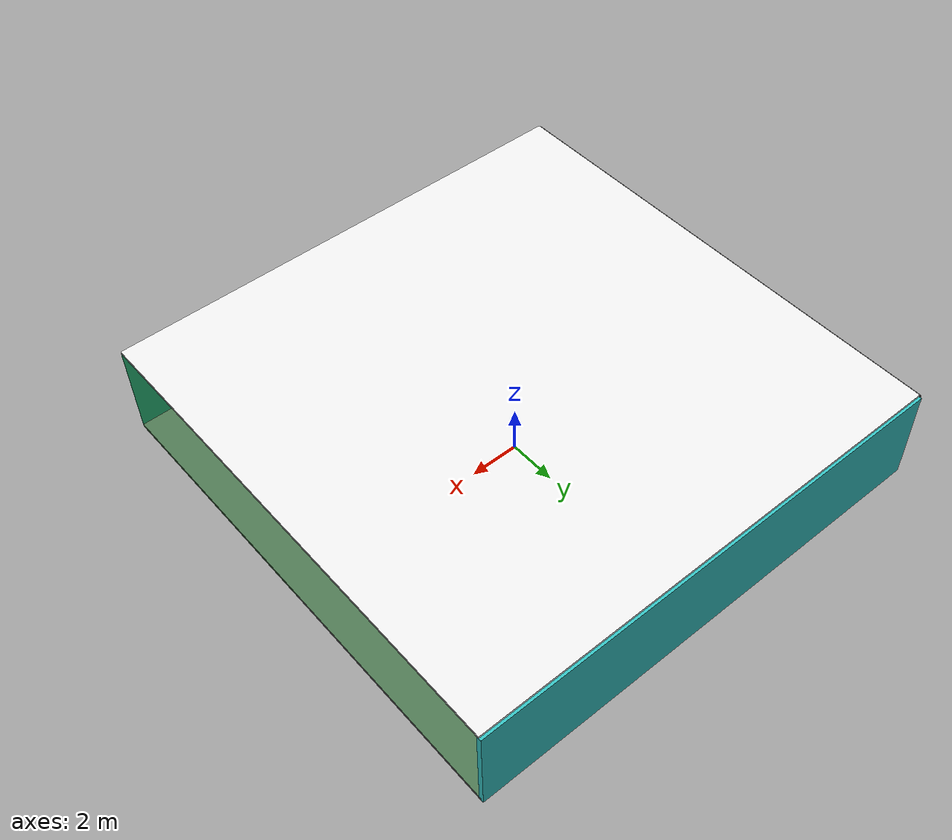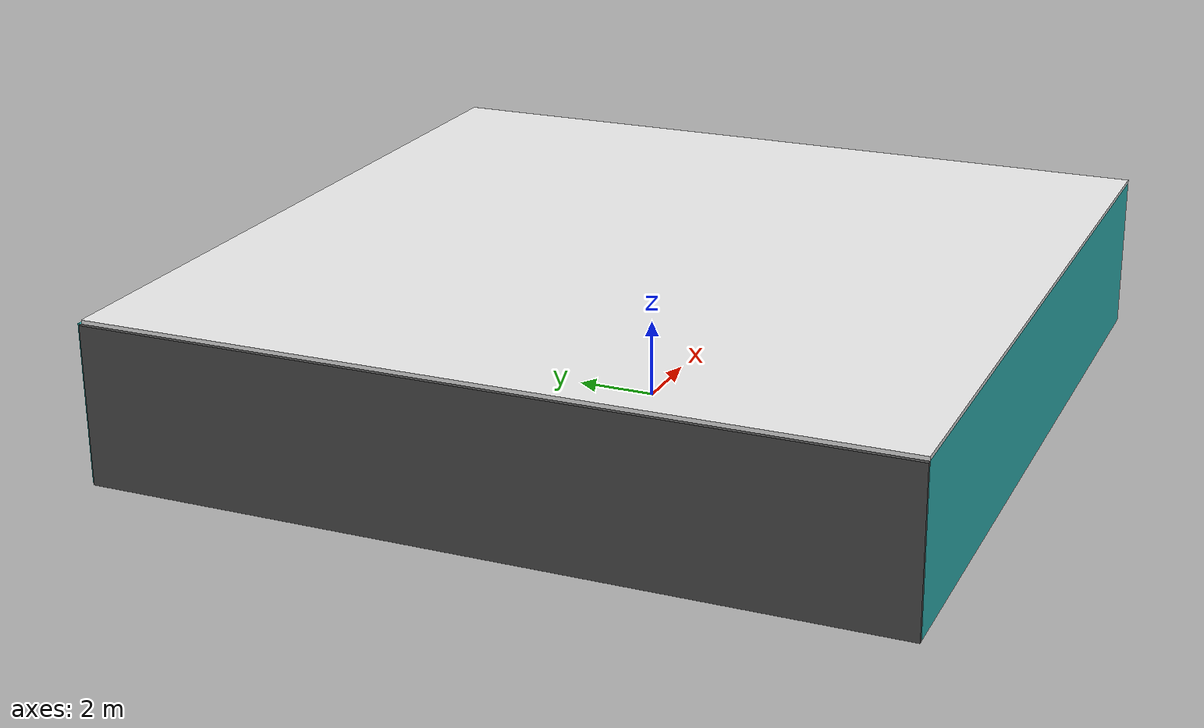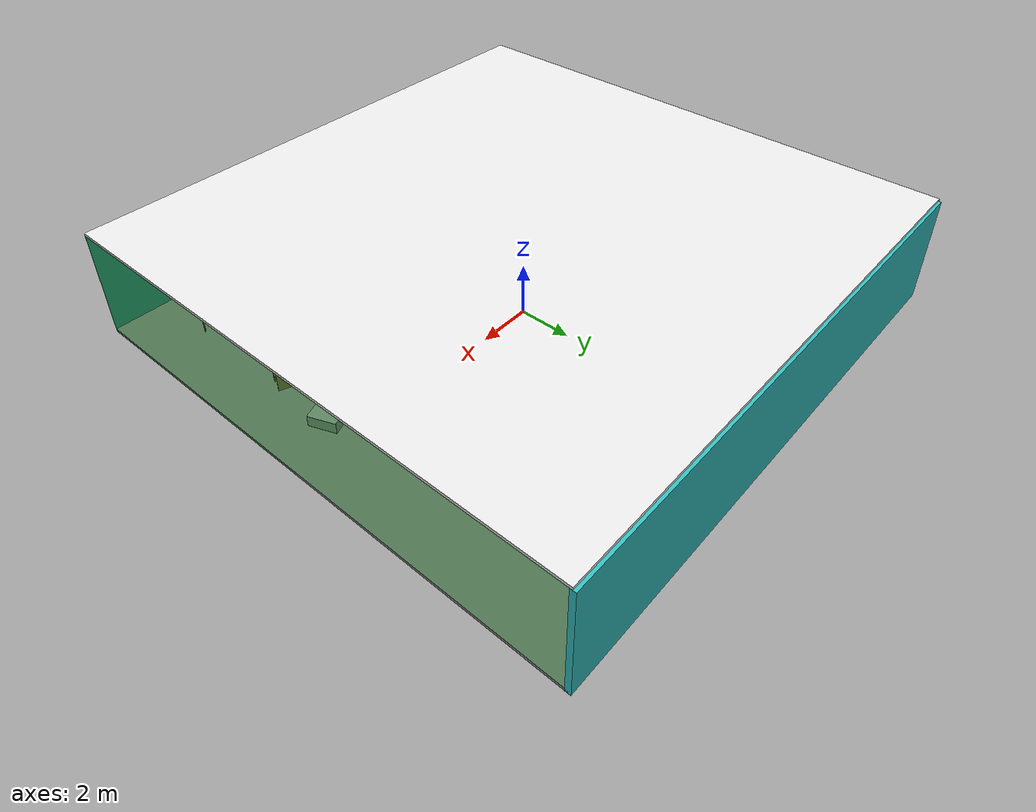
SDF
<sdf version="1.4">
 <world name="default">
  <physics type="ode">
   <max_step_size>0.001</max_step_size>
   <real_time_factor>1</real_time_factor>
   <real_time_update_rate>1000</real_time_update_rate>
   <gravity>0 0 -9.8</gravity>
  </physics>
  <scene><ambient>0.4 0.4 0.4 1</ambient><background>0.7 0.7 0.7 1</background><shadows>1</shadows></scene>
  <model name="Surrounding">
   <static>1</static>
   <link name="Ceiling">
    <collision name="Ceiling_Collision"><geometry><box><size>20 20 0.1</size></box></geometry></collision>
    <visual name="Ceiling_Visual">
     <geometry><box><size>20 20 0.1</size></box></geometry>
     <material>
      <script><uri>file://media/materials/scripts/gazebo.material</uri><name>Gazebo/White</name></script>
     </material>
    </visual>
    <pose>0 0 4.05 0 0 0</pose>
   </link>
   <link name="Wall_South">
    <collision name="Wall_South_Collision">
     <geometry><box><size>20 0 4</size></box></geometry>
     <pose>0 0 2 0 -0 0</pose>
    </collision>
    <visual name="Wall_South_Visual">
     <pose>0 0 2 0 -0 0</pose>
     <geometry><box><size>20 0 4</size></box></geometry>
     <material>
      <script><uri>file://media/materials/scripts/gazebo.material</uri><name>Gazebo/TurquoiseGlow</name></script>
     </material>
    </visual>
    <velocity_decay><linear>0</linear><angular>0</angular></velocity_decay>
    <pose>0 -10 0 0 -0 0</pose>
   </link>
   <link name="Wall_East">
    <collision name="Wall_21_Collision">
     <geometry><box><size>20 0 4</size></box></geometry>
     <pose>0 0 2 0 -0 0</pose>
    </collision>
    <visual name="Wall_21_Visual">
     <pose>0 0 2 0 -0 0</pose>
     <geometry><box><size>20 0 4</size></box></geometry>
     <material>
      <script><uri>file://media/materials/scripts/gazebo.material</uri><name>Gazebo/GreenTransparent</name></script>
     </material>
    </visual>
    <velocity_decay><linear>0</linear><angular>0</angular></velocity_decay>
    <pose>10 0 0 0 -0 1.5708</pose>
   </link>
   <link name="Wall_North">
    <collision name="Wall_22_Collision">
     <geometry><box><size>20 0.2 4</size></box></geometry>
     <pose>0 0 2 0 -0 0</pose>
    </collision>
    <visual name="Wall_22_Visual">
     <pose>0 0 2 0 -0 0</pose>
     <geometry><box><size>20 0.2 4</size></box></geometry>
     <material>
      <script><uri>file://media/materials/scripts/gazebo.material</uri><name>Gazebo/Turquoise</name></script>
     </material>
    </visual>
    <velocity_decay><linear>0</linear><angular>0</angular></velocity_decay>
    <pose>0 10 0 0 -0 0</pose>
   </link>
   <link name="Wall_West">
    <collision name="Wall_23_Collision">
     <geometry><box><size>20 0.2 4</size></box></geometry>
     <pose>0 0 2 0 -0 0</pose>
    </collision>
    <visual name="Wall_23_Visual">
     <pose>0 0 2 0 -0 0</pose>
     <geometry><box><size>20 0.2 4</size></box></geometry>
     <material>
      <script><uri>file://media/materials/scripts/gazebo.material</uri><name>Gazebo/DarkGrey</name></script>
     </material>
    </visual>
    <velocity_decay><linear>0</linear><angular>0</angular></velocity_decay>
    <pose>-10 0 0 0 0 -1.5708</pose>
   </link>
   <link name="Ground_link">
    <collision name="collision">
     <pose>0 0 .05 0 -0 0</pose>
     <geometry><box><size>20 20 0.1</size></box></geometry>
    </collision>
    <visual name="visual">
     <pose>0 0 .05 0 -0 0</pose>
     <geometry><box><size>20 20 0.1</size></box></geometry>
     <material>
      <script><uri>file://media/materials/scripts/gazebo.material</uri><name>Gazebo/GreyGradientSky</name></script>
     </material>
    </visual>
   </link>
   <static>1</static>
  </model>
  <spherical_coordinates>
   <surface_model>EARTH_WGS84</surface_model>
   <latitude_deg>0</latitude_deg>
   <longitude_deg>0</longitude_deg>
   <elevation>0</elevation>
   <heading_deg>0</heading_deg>
  </spherical_coordinates>
  <light name="lightball_0" type="diffuse">
   <diffuse>0.8 0.8 0.8 1</diffuse>
   <specular>0.2 0.2 0.2 1</specular>
   <attenuation>
    <range>100</range>
    <constant>0.7</constant>
    <linear>0.01</linear>
    <quadratic>0.001</quadratic>
   </attenuation>
   <direction>-0.5 0.1 -0.9</direction>
   <pose>-2.23091869418 -4.87460871583 1.82251525484 0 0 0</pose>
  </light>
  <light name="lightball_1" type="diffuse">
   <diffuse>0.8 0.8 0.8 1</diffuse>
   <specular>0.2 0.2 0.2 1</specular>
   <attenuation>
    <range>100</range>
    <constant>0.7</constant>
    <linear>0.01</linear>
    <quadratic>0.001</quadratic>
   </attenuation>
   <direction>-0.5 0.1 -0.9</direction>
   <pose>-9.82039921293 0.368727657406 1.43675704881 0 0 0</pose>
  </light>
  <light name="lightball_2" type="diffuse">
   <diffuse>0.8 0.8 0.8 1</diffuse>
   <specular>0.2 0.2 0.2 1</specular>
   <attenuation>
    <range>100</range>
    <constant>0.7</constant>
    <linear>0.01</linear>
    <quadratic>0.001</quadratic>
   </attenuation>
   <direction>-0.5 0.1 -0.9</direction>
   <pose>-0.507704542123 5.07053456758 1.99425285681 0 0 0</pose>
  </light>
  <light name="lightball_3" type="diffuse">
   <diffuse>0.8 0.8 0.8 1</diffuse>
   <specular>0.2 0.2 0.2 1</specular>
   <attenuation>
    <range>100</range>
    <constant>0.7</constant>
    <linear>0.01</linear>
    <quadratic>0.001</quadratic>
   </attenuation>
   <direction>-0.5 0.1 -0.9</direction>
   <pose>-8.79337322355 6.48560357745 3.44299955207 0 0 0</pose>
  </light>
  <light name="lightball_4" type="diffuse">
   <diffuse>0.8 0.8 0.8 1</diffuse>
   <specular>0.2 0.2 0.2 1</specular>
   <attenuation>
    <range>100</range>
    <constant>0.7</constant>
    <linear>0.01</linear>
    <quadratic>0.001</quadratic>
   </attenuation>
   <direction>-0.5 0.1 -0.9</direction>
   <pose>-7.8953086264 1.29215045949 2.77065198609 0 0 0</pose>
  </light>
  <light name="lightball_5" type="diffuse">
   <diffuse>0.8 0.8 0.8 1</diffuse>
   <specular>0.2 0.2 0.2 1</specular>
   <attenuation>
    <range>100</range>
    <constant>0.7</constant>
    <linear>0.01</linear>
    <quadratic>0.001</quadratic>
   </attenuation>
   <direction>-0.5 0.1 -0.9</direction>
   <pose>-1.77482555396 -9.49084300319 1.0504430754 0 0 0</pose>
  </light>
  <light name="lightball_6" type="diffuse">
   <diffuse>0.8 0.8 0.8 1</diffuse>
   <specular>0.2 0.2 0.2 1</specular>
   <attenuation>
    <range>100</range>
    <constant>0.7</constant>
    <linear>0.01</linear>
    <quadratic>0.001</quadratic>
   </attenuation>
   <direction>-0.5 0.1 -0.9</direction>
   <pose>6.55907029071 -8.07381693921 0.998853475916 0 0 0</pose>
  </light>
  <light name="lightball_7" type="diffuse">
   <diffuse>0.8 0.8 0.8 1</diffuse>
   <specular>0.2 0.2 0.2 1</specular>
   <attenuation>
    <range>100</range>
    <constant>0.7</constant>
    <linear>0.01</linear>
    <quadratic>0.001</quadratic>
   </attenuation>
   <direction>-0.5 0.1 -0.9</direction>
   <pose>0.514421353107 2.20386675025 3.65311588708 0 0 0</pose>
  </light>
  <light name="lightball_8" type="diffuse">
   <diffuse>0.8 0.8 0.8 1</diffuse>
   <specular>0.2 0.2 0.2 1</specular>
   <attenuation>
    <range>100</range>
    <constant>0.7</constant>
    <linear>0.01</linear>
    <quadratic>0.001</quadratic>
   </attenuation>
   <direction>-0.5 0.1 -0.9</direction>
   <pose>8.08461434405 -6.00715982119 2.01708906033 0 0 0</pose>
  </light>
  <light name="lightball_9" type="diffuse">
   <diffuse>0.8 0.8 0.8 1</diffuse>
   <specular>0.2 0.2 0.2 1</specular>
   <attenuation>
    <range>100</range>
    <constant>0.7</constant>
    <linear>0.01</linear>
    <quadratic>0.001</quadratic>
   </attenuation>
   <direction>-0.5 0.1 -0.9</direction>
   <pose>-1.45864825335 5.66288012885 2.75001693433 0 0 0</pose>
  </light>
  <light name="lightball_10" type="diffuse">
   <diffuse>0.8 0.8 0.8 1</diffuse>
   <specular>0.2 0.2 0.2 1</specular>
   <attenuation>
    <range>100</range>
    <constant>0.7</constant>
    <linear>0.01</linear>
    <quadratic>0.001</quadratic>
   </attenuation>
   <direction>-0.5 0.1 -0.9</direction>
   <pose>-1.14597994963 -6.75466367731 3.73560147139 0 0 0</pose>
  </light>
  <light name="lightball_11" type="diffuse">
   <diffuse>0.8 0.8 0.8 1</diffuse>
   <specular>0.2 0.2 0.2 1</specular>
   <attenuation>
    <range>100</range>
    <constant>0.7</constant>
    <linear>0.01</linear>
    <quadratic>0.001</quadratic>
   </attenuation>
   <direction>-0.5 0.1 -0.9</direction>
   <pose>0.00647131191168 -2.59250557528 1.64497976891 0 0 0</pose>
  </light>
  <include><uri>model://table</uri><pose>-7.7417719783 -6.86191285874 0 0 0 2.4125044857</pose></include>
  <include><uri>model://table</uri><pose>-4.43474761258 0.900458331286 0 0 0 2.0425040452</pose></include>
  <include><uri>model://table</uri><pose>-1.04519562047 1.25003694029 0 0 0 0.386705790301</pose></include>
  <include>
   <uri>model://textured_shapes</uri>
   <pose>1.65440723667 -1.46555179502 0 0 0 0.327735253535</pose>
  </include>
  <include>
   <uri>model://construction_cone</uri>
   <pose>3.64496780999 -3.51671931638 0 0 0 1.74534827735</pose>
  </include>
  <include><uri>model://table</uri><pose>7.28333821214 -7.48605575267 0 0 0 0.440617924376</pose></include>
  <include><uri>model://cabinet</uri><pose>7.92659931817 -3.38168566833 0 0 0 2.77062256127</pose></include>
  <include>
   <uri>model://textured_shapes</uri>
   <pose>6.52714278651 -1.57216067622 0 0 0 1.93975409786</pose>
  </include>
 </world>
</sdf>

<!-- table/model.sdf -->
<sdf version="1.5">
  <model name="table">
    <static>true</static>
    <link name="link">
      <collision name="surface">
        <pose>0 0 1.0 0 0 0</pose>
        <geometry>
          <box>
            <size>1.5 0.8 0.03</size>
          </box>
        </geometry>
        <surface>
          <friction>
            <ode>
              <mu>0.6</mu>
              <mu2>0.6</mu2>
            </ode>
          </friction>
        </surface>
      </collision>
      <visual name="visual1">
        <pose>0 0 1.0 0 0 0</pose>
        <geometry>
          <box>
            <size>1.5 0.8 0.03</size>
          </box>
        </geometry>
        <material>
          <script>
            <uri>model://media/materials/scripts/gazebo.material</uri>
            <name>Gazebo/Wood</name>
          </script>
        </material>
      </visual>
      <collision name="front_left_leg">
        <pose>0.68 0.38 0.5 0 0 0</pose>
        <geometry>
          <cylinder>
            <radius>0.02</radius>
            <length>1.0</length>
          </cylinder>
        </geometry>
      </collision>
      <visual name="front_left_leg">
        <pose>0.68 0.38 0.5 0 0 0</pose>
        <geometry>
          <cylinder>
            <radius>0.02</radius>
            <length>1.0</length>
          </cylinder>
        </geometry>
        <material>
          <script>
            <uri>model://media/materials/scripts/gazebo.material</uri>
            <name>Gazebo/Grey</name>
          </script>
        </material>
      </visual>
      <collision name="front_right_leg">
        <pose>0.68 -0.38 0.5 0 0 0</pose>
        <geometry>
          <cylinder>
            <radius>0.02</radius>
            <length>1.0</length>
          </cylinder>
        </geometry>
      </collision>
      <visual name="front_right_leg">
        <pose>0.68 -0.38 0.5 0 0 0</pose>
        <geometry>
          <cylinder>
            <radius>0.02</radius>
            <length>1.0</length>
          </cylinder>
        </geometry>
        <material>
          <script>
            <uri>model://media/materials/scripts/gazebo.material</uri>
            <name>Gazebo/Grey</name>
          </script>
        </material>
      </visual>
      <collision name="back_right_leg">
        <pose>-0.68 -0.38 0.5 0 0 0</pose>
        <geometry>
          <cylinder>
            <radius>0.02</radius>
            <length>1.0</length>
          </cylinder>
        </geometry>
      </collision>
      <visual name="back_right_leg">
        <pose>-0.68 -0.38 0.5 0 0 0</pose>
        <geometry>
          <cylinder>
            <radius>0.02</radius>
            <length>1.0</length>
          </cylinder>
        </geometry>
        <material>
          <script>
            <uri>model://media/materials/scripts/gazebo.material</uri>
            <name>Gazebo/Grey</name>
          </script>
        </material>
      </visual>
      <collision name="back_left_leg">
        <pose>-0.68 0.38 0.5 0 0 0</pose>
        <geometry>
          <cylinder>
            <radius>0.02</radius>
            <length>1.0</length>
          </cylinder>
        </geometry>
      </collision>
      <visual name="back_left_leg">
        <pose>-0.68 0.38 0.5 0 0 0</pose>
        <geometry>
          <cylinder>
            <radius>0.02</radius>
            <length>1.0</length>
          </cylinder>
        </geometry>
        <material>
          <script>
            <uri>model://media/materials/scripts/gazebo.material</uri>
            <name>Gazebo/Grey</name>
          </script>
        </material>
      </visual>
    </link>
  </model>
</sdf>

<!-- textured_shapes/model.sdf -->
<sdf version="1.6">
  <model name="textured_shapes">
    <pose>0 0 0.5 0 0 0</pose>
    <link name="box">
      <pose>0 -1.5 0 0 0 0</pose>
      <collision name="collision">
        <geometry>
          <box>
            <size>1 1 1</size>
          </box>
        </geometry>
      </collision>
      <visual name="visual">
        <geometry>
          <box>
            <size>1 1 1</size>
          </box>
        </geometry>
        <material>
          <script>
            <uri>model://../model_source/models/textured_shapes/materials/scripts</uri>
            <uri>model://../model_source/models/textured_shapes/materials/textures</uri>
            <name>TexturedShape/Squares</name>
          </script>
        </material>
      </visual>
    </link>
    <link name="sphere">
      <collision name="collision">
        <geometry>
          <sphere>
            <radius>0.5</radius>
          </sphere>
        </geometry>
      </collision>
      <visual name="visual">
        <geometry>
          <sphere>
            <radius>0.5</radius>
          </sphere>
        </geometry>
        <material>
          <script>
            <uri>model://../model_source/models/textured_shapes/materials/scripts</uri>
            <uri>model://../model_source/models/textured_shapes/materials/textures</uri>
            <name>TexturedShape/Squares</name>
          </script>
        </material>
      </visual>
    </link>
    <link name="cylinder">
      <pose>0 1.5 0 0 0 0</pose>
      <collision name="collision">
        <geometry>
          <cylinder>
            <radius>0.5</radius>
            <length>1</length>
          </cylinder>
        </geometry>
      </collision>
      <visual name="visual">
        <geometry>
          <cylinder>
            <radius>0.5</radius>
            <length>1</length>
          </cylinder>
        </geometry>
        <material>
          <script>
            <uri>model://../model_source/models/textured_shapes/materials/scripts</uri>
            <uri>model://../model_source/models/textured_shapes/materials/textures</uri>
            <name>TexturedShape/Squares</name>
          </script>
        </material>
      </visual>
    </link>
  </model>
</sdf>

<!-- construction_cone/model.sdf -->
<sdf version="1.5">
  <model name="Construction Cone">
    <link name="link">
      <collision name="collision">
        <geometry>
          <mesh>
            <scale>10 10 10</scale>
            <uri>file://isr-testbed/construction_cone/meshes/construction_cone.dae</uri>
          </mesh>
        </geometry>
      </collision>
      <visual name="visual">
        <geometry>
          <mesh>
            <scale>10 10 10</scale>
            <uri>file://isr-testbed/construction_cone/meshes/construction_cone.dae</uri>
          </mesh>
        </geometry>
      </visual>
    </link>
  </model>
</sdf>

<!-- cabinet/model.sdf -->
<sdf version="1.5">
  <model name="cabinet">
    <static>true</static>
    <link name="cabinet_bottom_plate">
      <inertial>
        <pose>0 0 -1 0 0 0</pose>
        <inertia>
          <ixx>2.050000</ixx>
          <ixy>0</ixy>
          <ixz>0</ixz>
          <iyy>2.050000</iyy>
          <iyz>0</iyz>
          <izz>2.050000</izz>
        </inertia>
        <mass>25.000000</mass>
      </inertial>
      <collision name="cabinet_bottom_plate_geom">
        <pose>0 0 0.010000 0 0 0</pose>
        <geometry>
          <box>
            <size>0.450000 0.450000 0.020000</size>
          </box>
        </geometry>
      </collision>
      <visual name="cabinet_bottom_plate_geom_visual">
        <pose>0 0 0.010000 0 0 0</pose>
        <geometry>
          <box>
            <size>0.450000 0.450000 0.020000</size>
          </box>
        </geometry>
        <material>
          <script>
            <uri>model://media/materials/scripts/gazebo.material</uri>
            <name>Gazebo/Wood</name>
          </script>
        </material>
      </visual>
      <collision name="cabinet_bottom_plate_geom_cabinet_back_plate">
        <pose>0.235000 0 0.510000 0 0 0</pose>
        <geometry>
          <box>
            <size>0.020000 0.450000 1.020000</size>
          </box>
        </geometry>
      </collision>
      <visual name="cabinet_bottom_plate_geom_cabinet_back_plate_visual">
        <pose>0.235000 0 0.510000 0 0 0</pose>
        <geometry>
          <box>
            <size>0.020000 0.450000 1.020000</size>
          </box>
        </geometry>
        <material>
          <script>
            <uri>model://media/materials/scripts/gazebo.material</uri>
            <name>Gazebo/Wood</name>
          </script>
        </material>
      </visual>
      <collision name="cabinet_bottom_plate_geom_cabinet_left_plate">
        <pose>0 0.235000 0.510000 0 0 0</pose>
        <geometry>
          <box>
            <size>0.450000 0.020000 1.020000</size>
          </box>
        </geometry>
      </collision>
      <visual name="cabinet_bottom_plate_geom_cabinet_left_plate_visual">
        <pose>0 0.235000 0.510000 0 0 0</pose>
        <geometry>
          <box>
            <size>0.450000 0.020000 1.020000</size>
          </box>
        </geometry>
        <material>
          <script>
            <uri>model://media/materials/scripts/gazebo.material</uri>
            <name>Gazebo/Wood</name>
          </script>
        </material>
      </visual>
      <collision name="cabinet_bottom_plate_geom_cabinet_middle_plate">
        <pose>0 0 0.510000 0 0 0</pose>
        <geometry>
          <box>
            <size>0.450000 0.450000 0.020000</size>
          </box>
        </geometry>
      </collision>
      <visual name="cabinet_bottom_plate_geom_cabinet_middle_plate_visual">
        <pose>0 0 0.510000 0 0 0</pose>
        <geometry>
          <box>
            <size>0.450000 0.450000 0.020000</size>
          </box>
        </geometry>
        <material>
          <script>
            <uri>model://media/materials/scripts/gazebo.material</uri>
            <name>Gazebo/Wood</name>
          </script>
        </material>
      </visual>
      <collision name="cabinet_bottom_plate_geom_cabinet_right_plate">
        <pose>0 -0.235000 0.510000 0 0 0</pose>
        <geometry>
          <box>
            <size>0.450000 0.020000 1.020000</size>
          </box>
        </geometry>
      </collision>
      <visual name="cabinet_bottom_plate_geom_cabinet_right_plate_visual">
        <pose>0 -0.235000 0.510000 0 0 0</pose>
        <geometry>
          <box>
            <size>0.450000 0.020000 1.020000</size>
          </box>
        </geometry>
        <material>
          <script>
            <uri>model://media/materials/scripts/gazebo.material</uri>
            <name>Gazebo/Wood</name>
          </script>
        </material>
      </visual>
      <collision name="cabinet_bottom_plate_geom_cabinet_top_plate">
        <pose>0 0 1.010000 0 0 0</pose>
        <geometry>
          <box>
            <size>0.450000 0.450000 0.020000</size>
          </box>
        </geometry>
      </collision>
      <visual name="cabinet_bottom_plate_geom_cabinet_top_plate_visual">
        <pose>0 0 1.010000 0 0 0</pose>
        <geometry>
          <box>
            <size>0.450000 0.450000 0.020000</size>
          </box>
        </geometry>
        <material>
          <script>
            <uri>model://media/materials/scripts/gazebo.material</uri>
            <name>Gazebo/Wood</name>
          </script>
        </material>
      </visual>
    </link>
  </model>
</sdf>
